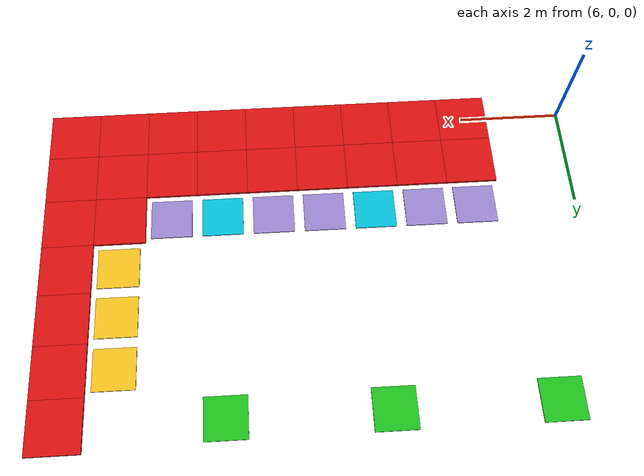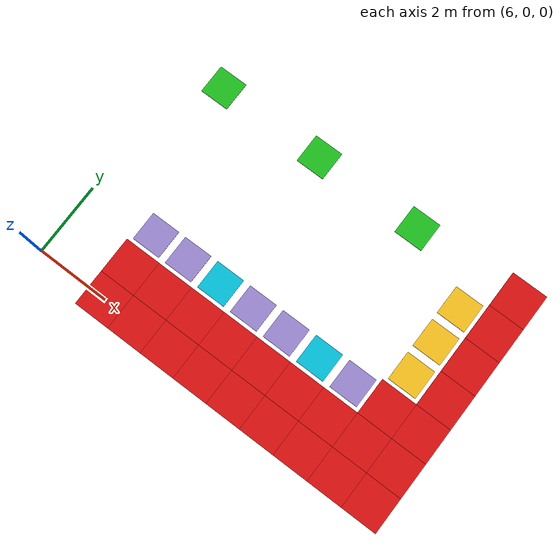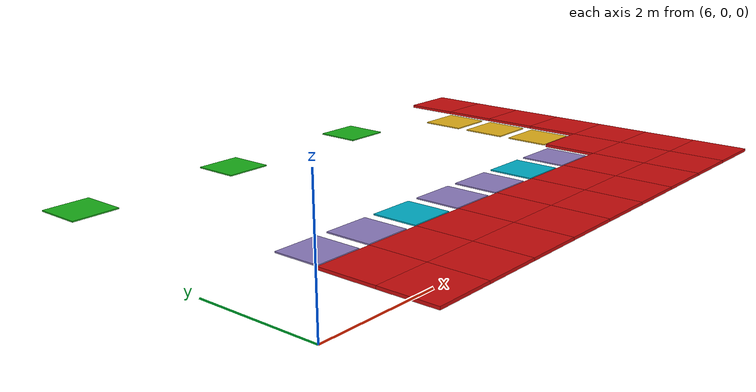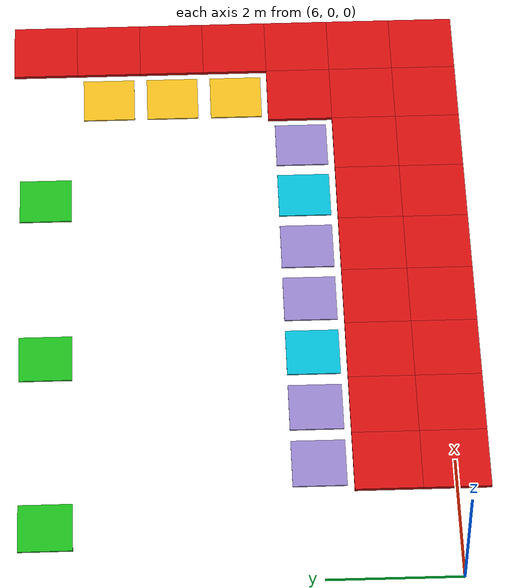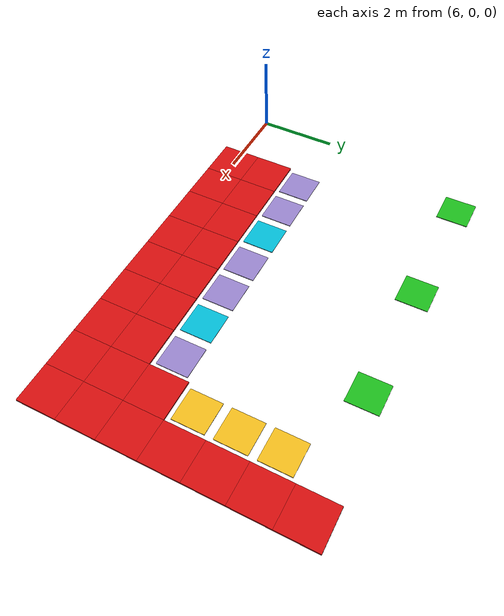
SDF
<sdf version="1.10">
 <world name="warehouse_10">
  <model name="blocked_0076">
   <static>true</static>
   <pose>8.0
        0.0
        0.045
        0 0 0</pose>
   <link name="link">
    <visual name="visual">
     <geometry><box><size>1.0
                1.0
                0.05</size></box></geometry>
     <material><ambient>0.8 0.05 0.05 1</ambient><diffuse>0.8 0.05 0.05 1</diffuse></material>
    </visual>
   </link>
  </model>
  <model name="blocked_0077">
   <static>true</static>
   <pose>8.0
        1.0
        0.045
        0 0 0</pose>
   <link name="link">
    <visual name="visual">
     <geometry><box><size>1.0
                1.0
                0.05</size></box></geometry>
     <material><ambient>0.8 0.05 0.05 1</ambient><diffuse>0.8 0.05 0.05 1</diffuse></material>
    </visual>
   </link>
  </model>
  <model name="blocked_0080">
   <static>true</static>
   <pose>9.0
        0.0
        0.045
        0 0 0</pose>
   <link name="link">
    <visual name="visual">
     <geometry><box><size>1.0
                1.0
                0.05</size></box></geometry>
     <material><ambient>0.8 0.05 0.05 1</ambient><diffuse>0.8 0.05 0.05 1</diffuse></material>
    </visual>
   </link>
  </model>
  <model name="blocked_0081">
   <static>true</static>
   <pose>9.0
        1.0
        0.045
        0 0 0</pose>
   <link name="link">
    <visual name="visual">
     <geometry><box><size>1.0
                1.0
                0.05</size></box></geometry>
     <material><ambient>0.8 0.05 0.05 1</ambient><diffuse>0.8 0.05 0.05 1</diffuse></material>
    </visual>
   </link>
  </model>
  <model name="blocked_0084">
   <static>true</static>
   <pose>10.0
        0.0
        0.045
        0 0 0</pose>
   <link name="link">
    <visual name="visual">
     <geometry><box><size>1.0
                1.0
                0.05</size></box></geometry>
     <material><ambient>0.8 0.05 0.05 1</ambient><diffuse>0.8 0.05 0.05 1</diffuse></material>
    </visual>
   </link>
  </model>
  <model name="blocked_0085">
   <static>true</static>
   <pose>10.0
        1.0
        0.045
        0 0 0</pose>
   <link name="link">
    <visual name="visual">
     <geometry><box><size>1.0
                1.0
                0.05</size></box></geometry>
     <material><ambient>0.8 0.05 0.05 1</ambient><diffuse>0.8 0.05 0.05 1</diffuse></material>
    </visual>
   </link>
  </model>
  <model name="blocked_0088">
   <static>true</static>
   <pose>11.0
        0.0
        0.045
        0 0 0</pose>
   <link name="link">
    <visual name="visual">
     <geometry><box><size>1.0
                1.0
                0.05</size></box></geometry>
     <material><ambient>0.8 0.05 0.05 1</ambient><diffuse>0.8 0.05 0.05 1</diffuse></material>
    </visual>
   </link>
  </model>
  <model name="blocked_0089">
   <static>true</static>
   <pose>11.0
        1.0
        0.045
        0 0 0</pose>
   <link name="link">
    <visual name="visual">
     <geometry><box><size>1.0
                1.0
                0.05</size></box></geometry>
     <material><ambient>0.8 0.05 0.05 1</ambient><diffuse>0.8 0.05 0.05 1</diffuse></material>
    </visual>
   </link>
  </model>
  <model name="blocked_0092">
   <static>true</static>
   <pose>12.0
        0.0
        0.045
        0 0 0</pose>
   <link name="link">
    <visual name="visual">
     <geometry><box><size>1.0
                1.0
                0.05</size></box></geometry>
     <material><ambient>0.8 0.05 0.05 1</ambient><diffuse>0.8 0.05 0.05 1</diffuse></material>
    </visual>
   </link>
  </model>
  <model name="blocked_0093">
   <static>true</static>
   <pose>12.0
        1.0
        0.045
        0 0 0</pose>
   <link name="link">
    <visual name="visual">
     <geometry><box><size>1.0
                1.0
                0.05</size></box></geometry>
     <material><ambient>0.8 0.05 0.05 1</ambient><diffuse>0.8 0.05 0.05 1</diffuse></material>
    </visual>
   </link>
  </model>
  <model name="blocked_0096">
   <static>true</static>
   <pose>13.0
        0.0
        0.045
        0 0 0</pose>
   <link name="link">
    <visual name="visual">
     <geometry><box><size>1.0
                1.0
                0.05</size></box></geometry>
     <material><ambient>0.8 0.05 0.05 1</ambient><diffuse>0.8 0.05 0.05 1</diffuse></material>
    </visual>
   </link>
  </model>
  <model name="blocked_0097">
   <static>true</static>
   <pose>13.0
        1.0
        0.045
        0 0 0</pose>
   <link name="link">
    <visual name="visual">
     <geometry><box><size>1.0
                1.0
                0.05</size></box></geometry>
     <material><ambient>0.8 0.05 0.05 1</ambient><diffuse>0.8 0.05 0.05 1</diffuse></material>
    </visual>
   </link>
  </model>
  <model name="blocked_0100">
   <static>true</static>
   <pose>14.0
        0.0
        0.045
        0 0 0</pose>
   <link name="link">
    <visual name="visual">
     <geometry><box><size>1.0
                1.0
                0.05</size></box></geometry>
     <material><ambient>0.8 0.05 0.05 1</ambient><diffuse>0.8 0.05 0.05 1</diffuse></material>
    </visual>
   </link>
  </model>
  <model name="blocked_0101">
   <static>true</static>
   <pose>14.0
        1.0
        0.045
        0 0 0</pose>
   <link name="link">
    <visual name="visual">
     <geometry><box><size>1.0
                1.0
                0.05</size></box></geometry>
     <material><ambient>0.8 0.05 0.05 1</ambient><diffuse>0.8 0.05 0.05 1</diffuse></material>
    </visual>
   </link>
  </model>
  <model name="blocked_0104">
   <static>true</static>
   <pose>15.0
        0.0
        0.045
        0 0 0</pose>
   <link name="link">
    <visual name="visual">
     <geometry><box><size>1.0
                1.0
                0.05</size></box></geometry>
     <material><ambient>0.8 0.05 0.05 1</ambient><diffuse>0.8 0.05 0.05 1</diffuse></material>
    </visual>
   </link>
  </model>
  <model name="blocked_0105">
   <static>true</static>
   <pose>15.0
        1.0
        0.045
        0 0 0</pose>
   <link name="link">
    <visual name="visual">
     <geometry><box><size>1.0
                1.0
                0.05</size></box></geometry>
     <material><ambient>0.8 0.05 0.05 1</ambient><diffuse>0.8 0.05 0.05 1</diffuse></material>
    </visual>
   </link>
  </model>
  <model name="blocked_0106">
   <static>true</static>
   <pose>15.0
        2.0
        0.045
        0 0 0</pose>
   <link name="link">
    <visual name="visual">
     <geometry><box><size>1.0
                1.0
                0.05</size></box></geometry>
     <material><ambient>0.8 0.05 0.05 1</ambient><diffuse>0.8 0.05 0.05 1</diffuse></material>
    </visual>
   </link>
  </model>
  <model name="blocked_0110">
   <static>true</static>
   <pose>16.0
        0.0
        0.045
        0 0 0</pose>
   <link name="link">
    <visual name="visual">
     <geometry><box><size>1.0
                1.0
                0.05</size></box></geometry>
     <material><ambient>0.8 0.05 0.05 1</ambient><diffuse>0.8 0.05 0.05 1</diffuse></material>
    </visual>
   </link>
  </model>
  <model name="blocked_0111">
   <static>true</static>
   <pose>16.0
        1.0
        0.045
        0 0 0</pose>
   <link name="link">
    <visual name="visual">
     <geometry><box><size>1.0
                1.0
                0.05</size></box></geometry>
     <material><ambient>0.8 0.05 0.05 1</ambient><diffuse>0.8 0.05 0.05 1</diffuse></material>
    </visual>
   </link>
  </model>
  <model name="blocked_0112">
   <static>true</static>
   <pose>16.0
        2.0
        0.045
        0 0 0</pose>
   <link name="link">
    <visual name="visual">
     <geometry><box><size>1.0
                1.0
                0.05</size></box></geometry>
     <material><ambient>0.8 0.05 0.05 1</ambient><diffuse>0.8 0.05 0.05 1</diffuse></material>
    </visual>
   </link>
  </model>
  <model name="blocked_0113">
   <static>true</static>
   <pose>16.0
        3.0
        0.045
        0 0 0</pose>
   <link name="link">
    <visual name="visual">
     <geometry><box><size>1.0
                1.0
                0.05</size></box></geometry>
     <material><ambient>0.8 0.05 0.05 1</ambient><diffuse>0.8 0.05 0.05 1</diffuse></material>
    </visual>
   </link>
  </model>
  <model name="blocked_0114">
   <static>true</static>
   <pose>16.0
        4.0
        0.045
        0 0 0</pose>
   <link name="link">
    <visual name="visual">
     <geometry><box><size>1.0
                1.0
                0.05</size></box></geometry>
     <material><ambient>0.8 0.05 0.05 1</ambient><diffuse>0.8 0.05 0.05 1</diffuse></material>
    </visual>
   </link>
  </model>
  <model name="blocked_0115">
   <static>true</static>
   <pose>16.0
        5.0
        0.045
        0 0 0</pose>
   <link name="link">
    <visual name="visual">
     <geometry><box><size>1.0
                1.0
                0.05</size></box></geometry>
     <material><ambient>0.8 0.05 0.05 1</ambient><diffuse>0.8 0.05 0.05 1</diffuse></material>
    </visual>
   </link>
  </model>
  <model name="blocked_0116">
   <static>true</static>
   <pose>16.0
        6.0
        0.045
        0 0 0</pose>
   <link name="link">
    <visual name="visual">
     <geometry><box><size>1.0
                1.0
                0.05</size></box></geometry>
     <material><ambient>0.8 0.05 0.05 1</ambient><diffuse>0.8 0.05 0.05 1</diffuse></material>
    </visual>
   </link>
  </model>
  <model name="shelf_046">
   <static>true</static>
   <pose>7.0
        6.0
        0.02
        0 0 0</pose>
   <link name="link">
    <visual name="visual">
     <geometry><box><size>0.8
                0.8
                0.02</size></box></geometry>
     <material><ambient>0.10 0.70 0.10 1</ambient><diffuse>0.10 0.70 0.10 1</diffuse></material>
    </visual>
   </link>
  </model>
  <model name="shelf_055">
   <static>true</static>
   <pose>10.0
        6.0
        0.02
        0 0 0</pose>
   <link name="link">
    <visual name="visual">
     <geometry><box><size>0.8
                0.8
                0.02</size></box></geometry>
     <material><ambient>0.10 0.70 0.10 1</ambient><diffuse>0.10 0.70 0.10 1</diffuse></material>
    </visual>
   </link>
  </model>
  <model name="shelf_064">
   <static>true</static>
   <pose>13.0
        6.0
        0.02
        0 0 0</pose>
   <link name="link">
    <visual name="visual">
     <geometry><box><size>0.8
                0.8
                0.02</size></box></geometry>
     <material><ambient>0.10 0.70 0.10 1</ambient><diffuse>0.10 0.70 0.10 1</diffuse></material>
    </visual>
   </link>
  </model>
  <model name="dropoff_028">
   <static>true</static>
   <pose>15.0
        3.0
        0.02
        0 0 0</pose>
   <link name="link">
    <visual name="visual">
     <geometry><box><size>0.8
                0.8
                0.02</size></box></geometry>
     <material><ambient>0.90 0.70 0.10 1</ambient><diffuse>0.90 0.70 0.10 1</diffuse></material>
    </visual>
   </link>
  </model>
  <model name="dropoff_029">
   <static>true</static>
   <pose>15.0
        4.0
        0.02
        0 0 0</pose>
   <link name="link">
    <visual name="visual">
     <geometry><box><size>0.8
                0.8
                0.02</size></box></geometry>
     <material><ambient>0.90 0.70 0.10 1</ambient><diffuse>0.90 0.70 0.10 1</diffuse></material>
    </visual>
   </link>
  </model>
  <model name="dropoff_030">
   <static>true</static>
   <pose>15.0
        5.0
        0.02
        0 0 0</pose>
   <link name="link">
    <visual name="visual">
     <geometry><box><size>0.8
                0.8
                0.02</size></box></geometry>
     <material><ambient>0.90 0.70 0.10 1</ambient><diffuse>0.90 0.70 0.10 1</diffuse></material>
    </visual>
   </link>
  </model>
  <model name="charge_queue_010">
   <static>true</static>
   <pose>8.0
        2.0
        0.02
        0 0 0</pose>
   <link name="link">
    <visual name="visual">
     <geometry><box><size>0.8
                0.8
                0.02</size></box></geometry>
     <material><ambient>0.56 0.49 0.76 1</ambient><diffuse>0.56 0.49 0.76 1</diffuse></material>
    </visual>
   </link>
  </model>
  <model name="charge_queue_011">
   <static>true</static>
   <pose>9.0
        2.0
        0.02
        0 0 0</pose>
   <link name="link">
    <visual name="visual">
     <geometry><box><size>0.8
                0.8
                0.02</size></box></geometry>
     <material><ambient>0.56 0.49 0.76 1</ambient><diffuse>0.56 0.49 0.76 1</diffuse></material>
    </visual>
   </link>
  </model>
  <model name="charging_007">
   <static>true</static>
   <pose>10.0
        2.0
        0.02
        0 0 0</pose>
   <link name="link">
    <visual name="visual">
     <geometry><box><size>0.8
                0.8
                0.02</size></box></geometry>
     <material><ambient>0.00 0.70 0.80 1</ambient><diffuse>0.00 0.70 0.80 1</diffuse></material>
    </visual>
   </link>
  </model>
  <model name="charge_queue_012">
   <static>true</static>
   <pose>11.0
        2.0
        0.02
        0 0 0</pose>
   <link name="link">
    <visual name="visual">
     <geometry><box><size>0.8
                0.8
                0.02</size></box></geometry>
     <material><ambient>0.56 0.49 0.76 1</ambient><diffuse>0.56 0.49 0.76 1</diffuse></material>
    </visual>
   </link>
  </model>
  <model name="charge_queue_013">
   <static>true</static>
   <pose>12.0
        2.0
        0.02
        0 0 0</pose>
   <link name="link">
    <visual name="visual">
     <geometry><box><size>0.8
                0.8
                0.02</size></box></geometry>
     <material><ambient>0.56 0.49 0.76 1</ambient><diffuse>0.56 0.49 0.76 1</diffuse></material>
    </visual>
   </link>
  </model>
  <model name="charging_008">
   <static>true</static>
   <pose>13.0
        2.0
        0.02
        0 0 0</pose>
   <link name="link">
    <visual name="visual">
     <geometry><box><size>0.8
                0.8
                0.02</size></box></geometry>
     <material><ambient>0.00 0.70 0.80 1</ambient><diffuse>0.00 0.70 0.80 1</diffuse></material>
    </visual>
   </link>
  </model>
  <model name="charge_queue_014">
   <static>true</static>
   <pose>14.0
        2.0
        0.02
        0 0 0</pose>
   <link name="link">
    <visual name="visual">
     <geometry><box><size>0.8
                0.8
                0.02</size></box></geometry>
     <material><ambient>0.56 0.49 0.76 1</ambient><diffuse>0.56 0.49 0.76 1</diffuse></material>
    </visual>
   </link>
  </model>
 </world>
</sdf>
